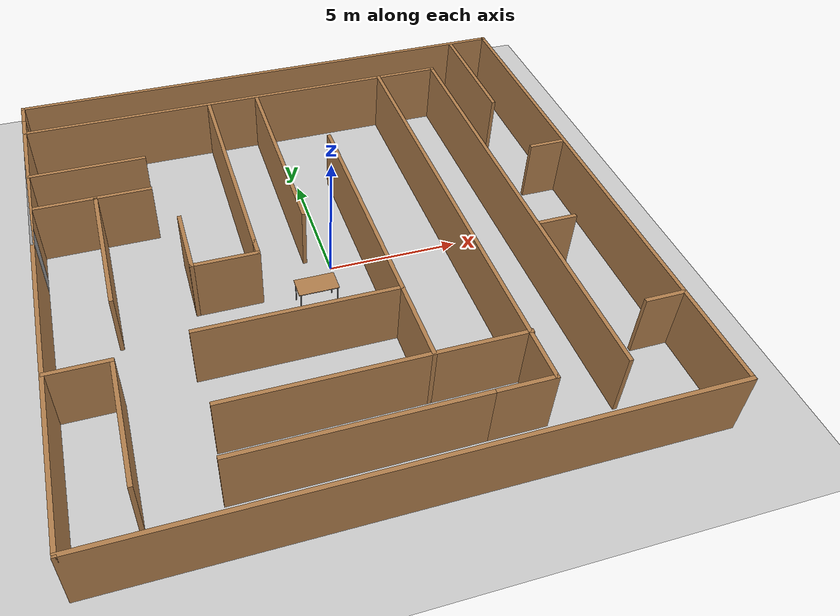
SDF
<sdf version="1.6">
 <world name="default">
  <light name="sun" type="directional">
   <pose>0 0 10 0 -0 0</pose>
   <diffuse>0.8 0.8 0.8 1</diffuse>
   <specular>0.2 0.2 0.2 1</specular>
   <attenuation>
    <range>1000</range>
    <constant>0.9</constant>
    <linear>0.01</linear>
    <quadratic>0.001</quadratic>
   </attenuation>
   <direction>-0.5 0.1 -0.9</direction>
  </light>
  <model name="ground_plane">
   <static>1</static>
   <link name="link">
    <collision name="collision">
     <geometry><plane><normal>0 0 1</normal><size>100 100</size></plane></geometry>
     <surface><friction><ode><mu>100</mu><mu2>50</mu2></ode></friction></surface>
    </collision>
    <visual name="visual">
     <cast_shadows>0</cast_shadows>
     <geometry><plane><normal>0 0 1</normal><size>100 100</size></plane></geometry>
     <material>
      <script><uri>file://media/materials/scripts/gazebo.material</uri><name>Gazebo/Grey</name></script>
     </material>
    </visual>
   </link>
  </model>
  <gravity>0 0 -9.8</gravity>
  <magnetic_field>6e-06 2.3e-05 -4.2e-05</magnetic_field>
  <atmosphere type="adiabatic"/>
  <physics name="default_physics" default="0" type="ode">
   <max_step_size>0.001</max_step_size>
   <real_time_factor>1</real_time_factor>
   <real_time_update_rate>1000</real_time_update_rate>
  </physics>
  <scene><ambient>0.4 0.4 0.4 1</ambient><background>0.7 0.7 0.7 1</background><shadows>1</shadows></scene>
  <spherical_coordinates>
   <surface_model>EARTH_WGS84</surface_model>
   <latitude_deg>0</latitude_deg>
   <longitude_deg>0</longitude_deg>
   <elevation>0</elevation>
   <heading_deg>0</heading_deg>
  </spherical_coordinates>
  <model name="Indoor2">
   <pose>-0.066349 -0.110572 0 0 -0 0</pose>
   <link name="Wall_0">
    <collision name="Wall_0_Collision">
     <geometry><box><size>7.75 0.15 2.5</size></box></geometry>
     <pose>0 0 1.25 0 -0 0</pose>
    </collision>
    <visual name="Wall_0_Visual">
     <pose>0 0 1.25 0 -0 0</pose>
     <geometry><box><size>7.75 0.15 2.5</size></box></geometry>
     <material>
      <script><uri>file://media/materials/scripts/gazebo.material</uri><name>Gazebo/Grey</name></script>
      <ambient>1 1 1 1</ambient>
     </material>
     <meta><layer>0</layer></meta>
    </visual>
    <pose>-10.425 5.625 0 0 -0 1.5708</pose>
   </link>
   <link name="Wall_1">
    <collision name="Wall_1_Collision">
     <geometry><box><size>20 0.15 2.5</size></box></geometry>
     <pose>0 0 1.25 0 -0 0</pose>
    </collision>
    <visual name="Wall_1_Visual">
     <pose>0 0 1.25 0 -0 0</pose>
     <geometry><box><size>20 0.15 2.5</size></box></geometry>
     <material>
      <script><uri>file://media/materials/scripts/gazebo.material</uri><name>Gazebo/Wood</name></script>
      <ambient>1 1 1 1</ambient>
     </material>
     <meta><layer>0</layer></meta>
    </visual>
    <pose>-10.425 -0.5 0 0 -0 -1.5708</pose>
   </link>
   <link name="Wall_10">
    <collision name="Wall_10_Collision">
     <geometry><box><size>17.5 0.15 2.5</size></box></geometry>
     <pose>0 0 1.25 0 -0 0</pose>
    </collision>
    <visual name="Wall_10_Visual">
     <pose>0 0 1.25 0 -0 0</pose>
     <geometry><box><size>17.5 0.15 2.5</size></box></geometry>
     <material>
      <script><uri>file://media/materials/scripts/gazebo.material</uri><name>Gazebo/Wood</name></script>
      <ambient>1 1 1 1</ambient>
     </material>
     <meta><layer>0</layer></meta>
    </visual>
    <pose>4.70041 -0.031499 0 0 -0 -1.5708</pose>
   </link>
   <link name="Wall_11">
    <collision name="Wall_11_Collision">
     <geometry><box><size>2.25 0.15 2.5</size></box></geometry>
     <pose>0 0 1.25 0 -0 0</pose>
    </collision>
    <visual name="Wall_11_Visual">
     <pose>0 0 1.25 0 -0 0</pose>
     <geometry><box><size>2.25 0.15 2.5</size></box></geometry>
     <material>
      <script><uri>file://media/materials/scripts/gazebo.material</uri><name>Gazebo/Wood</name></script>
      <ambient>1 1 1 1</ambient>
     </material>
     <meta><layer>0</layer></meta>
    </visual>
    <pose>3.65041 -8.7065 0 0 -0 3.14159</pose>
   </link>
   <link name="Wall_12">
    <collision name="Wall_12_Collision">
     <geometry><box><size>8.5 0.15 2.5</size></box></geometry>
     <pose>0 0 1.25 0 -0 0</pose>
    </collision>
    <visual name="Wall_12_Visual">
     <pose>0 0 1.25 0 -0 0</pose>
     <geometry><box><size>8.5 0.15 2.5</size></box></geometry>
     <material>
      <script><uri>file://media/materials/scripts/gazebo.material</uri><name>Gazebo/Wood</name></script>
      <ambient>1 1 1 1</ambient>
     </material>
     <meta><layer>0</layer></meta>
    </visual>
    <pose>-1.57459 -8.7065 0 0 -0 3.14159</pose>
   </link>
   <link name="Wall_14">
    <collision name="Wall_14_Collision">
     <geometry><box><size>10.5 0.15 2.5</size></box></geometry>
     <pose>0 0 1.25 0 -0 0</pose>
    </collision>
    <visual name="Wall_14_Visual">
     <pose>0 0 1.25 0 -0 0</pose>
     <geometry><box><size>10.5 0.15 2.5</size></box></geometry>
     <material>
      <script><uri>file://media/materials/scripts/gazebo.material</uri><name>Gazebo/Wood</name></script>
      <ambient>1 1 1 1</ambient>
     </material>
     <meta><layer>0</layer></meta>
    </visual>
    <pose>-0.422743 -6.80372 0 0 -0 0</pose>
   </link>
   <link name="Wall_16">
    <collision name="Wall_16_Collision">
     <geometry><box><size>12 0.15 2.5</size></box></geometry>
     <pose>0 0 1.25 0 -0 0</pose>
    </collision>
    <visual name="Wall_16_Visual">
     <pose>0 0 1.25 0 -0 0</pose>
     <geometry><box><size>12 0.15 2.5</size></box></geometry>
     <material>
      <script><uri>file://media/materials/scripts/gazebo.material</uri><name>Gazebo/Wood</name></script>
      <ambient>1 1 1 1</ambient>
     </material>
     <meta><layer>0</layer></meta>
    </visual>
    <pose>1.42189 -0.878722 0 0 -0 1.5708</pose>
   </link>
   <link name="Wall_18">
    <collision name="Wall_18_Collision">
     <geometry><box><size>7.25 0.15 2.5</size></box></geometry>
     <pose>0 0 1.25 0 -0 0</pose>
    </collision>
    <visual name="Wall_18_Visual">
     <pose>0 0 1.25 0 -0 0</pose>
     <geometry><box><size>7.25 0.15 2.5</size></box></geometry>
     <material>
      <script><uri>file://media/materials/scripts/gazebo.material</uri><name>Gazebo/Wood</name></script>
      <ambient>1 1 1 1</ambient>
     </material>
     <meta><layer>0</layer></meta>
    </visual>
    <pose>-2.16833 -3.8068 0 0 -0 3.14159</pose>
   </link>
   <link name="Wall_2">
    <collision name="Wall_2_Collision">
     <geometry><box><size>21 0.15 2.5</size></box></geometry>
     <pose>0 0 1.25 0 -0 0</pose>
    </collision>
    <visual name="Wall_2_Visual">
     <pose>0 0 1.25 0 -0 0</pose>
     <geometry><box><size>21 0.15 2.5</size></box></geometry>
     <material>
      <script><uri>file://media/materials/scripts/gazebo.material</uri><name>Gazebo/Wood</name></script>
      <ambient>1 1 1 1</ambient>
     </material>
     <meta><layer>0</layer></meta>
    </visual>
    <pose>0 -10.425 0 0 -0 0</pose>
   </link>
   <link name="Wall_20">
    <collision name="Wall_20_Collision">
     <geometry><box><size>9 0.15 2.5</size></box></geometry>
     <pose>0 0 1.25 0 -0 0</pose>
    </collision>
    <visual name="Wall_20_Visual">
     <pose>0 0 1.25 0 -0 0</pose>
     <geometry><box><size>9 0.15 2.5</size></box></geometry>
     <material>
      <script><uri>file://media/materials/scripts/gazebo.material</uri><name>Gazebo/Wood</name></script>
      <ambient>1 1 1 1</ambient>
     </material>
     <meta><layer>0</layer></meta>
    </visual>
    <pose>-2.8623 4.19839 0 0 -0 -1.5708</pose>
   </link>
   <link name="Wall_22">
    <collision name="Wall_22_Collision">
     <geometry><box><size>4.5 0.15 2.5</size></box></geometry>
     <pose>0 0 1.25 0 -0 0</pose>
    </collision>
    <visual name="Wall_22_Visual">
     <pose>0 0 1.25 0 -0 0</pose>
     <geometry><box><size>4.5 0.15 2.5</size></box></geometry>
     <material>
      <script><uri>file://media/materials/scripts/gazebo.material</uri><name>Gazebo/Wood</name></script>
      <ambient>1 1 1 1</ambient>
     </material>
     <meta><layer>0</layer></meta>
    </visual>
    <pose>-8.16955 5.70692 0 0 -0 0</pose>
   </link>
   <link name="Wall_24">
    <collision name="Wall_24_Collision">
     <geometry><box><size>4.5 0.15 2.5</size></box></geometry>
     <pose>0 0 1.25 0 -0 0</pose>
    </collision>
    <visual name="Wall_24_Visual">
     <pose>0 0 1.25 0 -0 0</pose>
     <geometry><box><size>4.5 0.15 2.5</size></box></geometry>
     <material>
      <script><uri>file://media/materials/scripts/gazebo.material</uri><name>Gazebo/Wood</name></script>
      <ambient>1 1 1 1</ambient>
     </material>
     <meta><layer>0</layer></meta>
    </visual>
    <pose>-8.18966 3.73579 0 0 -0 0</pose>
   </link>
   <link name="Wall_26">
    <collision name="Wall_26_Collision">
     <geometry><box><size>5.5 0.15 2.5</size></box></geometry>
     <pose>0 0 1.25 0 -0 0</pose>
    </collision>
    <visual name="Wall_26_Visual">
     <pose>0 0 1.25 0 -0 0</pose>
     <geometry><box><size>5.5 0.15 2.5</size></box></geometry>
     <material>
      <script><uri>file://media/materials/scripts/gazebo.material</uri><name>Gazebo/Wood</name></script>
      <ambient>1 1 1 1</ambient>
     </material>
     <meta><layer>0</layer></meta>
    </visual>
    <pose>-8.0516 0.980335 0 0 -0 -1.5708</pose>
   </link>
   <link name="Wall_28">
    <collision name="Wall_28_Collision">
     <geometry><box><size>0.75 0.15 2.5</size></box></geometry>
     <pose>0 0 1.25 0 -0 0</pose>
    </collision>
    <visual name="Wall_28_Visual">
     <pose>0 0 1.25 0 -0 0</pose>
     <geometry><box><size>0.75 0.15 2.5</size></box></geometry>
     <material>
      <script><uri>file://media/materials/scripts/gazebo.material</uri><name>Gazebo/Wood</name></script>
      <ambient>1 1 1 1</ambient>
     </material>
     <meta><layer>0</layer></meta>
    </visual>
    <pose>-2.8623 -0.526613 0 0 -0 -1.5708</pose>
   </link>
   <link name="Wall_29">
    <collision name="Wall_29_Collision">
     <geometry><box><size>2.5 0.15 2.5</size></box></geometry>
     <pose>0 0 1.25 0 -0 0</pose>
    </collision>
    <visual name="Wall_29_Visual">
     <pose>0 0 1.25 0 -0 0</pose>
     <geometry><box><size>2.5 0.15 2.5</size></box></geometry>
     <material>
      <script><uri>file://media/materials/scripts/gazebo.material</uri><name>Gazebo/Wood</name></script>
      <ambient>1 1 1 1</ambient>
     </material>
     <meta><layer>0</layer></meta>
    </visual>
    <pose>-4.0373 -0.826613 0 0 -0 3.14159</pose>
   </link>
   <link name="Wall_3">
    <collision name="Wall_3_Collision">
     <geometry><box><size>21 0.15 2.5</size></box></geometry>
     <pose>0 0 1.25 0 -0 0</pose>
    </collision>
    <visual name="Wall_3_Visual">
     <pose>0 0 1.25 0 -0 0</pose>
     <geometry><box><size>21 0.15 2.5</size></box></geometry>
     <material>
      <script><uri>file://media/materials/scripts/gazebo.material</uri><name>Gazebo/Wood</name></script>
      <ambient>1 1 1 1</ambient>
     </material>
     <meta><layer>0</layer></meta>
    </visual>
    <pose>10.425 0 0 0 -0 1.5708</pose>
   </link>
   <link name="Wall_30">
    <collision name="Wall_30_Collision">
     <geometry><box><size>2.75 0.15 2.5</size></box></geometry>
     <pose>0 0 1.25 0 -0 0</pose>
    </collision>
    <visual name="Wall_30_Visual">
     <pose>0 0 1.25 0 -0 0</pose>
     <geometry><box><size>2.75 0.15 2.5</size></box></geometry>
     <material>
      <script><uri>file://media/materials/scripts/gazebo.material</uri><name>Gazebo/Wood</name></script>
      <ambient>1 1 1 1</ambient>
     </material>
     <meta><layer>0</layer></meta>
    </visual>
    <pose>-5.2123 0.473387 0 0 -0 1.5708</pose>
   </link>
   <link name="Wall_32">
    <collision name="Wall_32_Collision">
     <geometry><box><size>8 0.15 2.5</size></box></geometry>
     <pose>0 0 1.25 0 -0 0</pose>
    </collision>
    <visual name="Wall_32_Visual">
     <pose>0 0 1.25 0 -0 0</pose>
     <geometry><box><size>8 0.15 2.5</size></box></geometry>
     <material>
      <script><uri>file://media/materials/scripts/gazebo.material</uri><name>Gazebo/Wood</name></script>
      <ambient>1 1 1 1</ambient>
     </material>
     <meta><layer>0</layer></meta>
    </visual>
    <pose>-0.810713 4.67827 0 0 -0 -1.5708</pose>
   </link>
   <link name="Wall_34">
    <collision name="Wall_34_Collision">
     <geometry><box><size>1.5 0.15 2.5</size></box></geometry>
     <pose>0 0 1.25 0 -0 0</pose>
    </collision>
    <visual name="Wall_34_Visual">
     <pose>0 0 1.25 0 -0 0</pose>
     <geometry><box><size>1.5 0.15 2.5</size></box></geometry>
     <material>
      <script><uri>file://media/materials/scripts/gazebo.material</uri><name>Gazebo/Wood</name></script>
      <ambient>1 1 1 1</ambient>
     </material>
     <meta><layer>0</layer></meta>
    </visual>
    <pose>9.69743 2.16693 0 0 -0 3.14159</pose>
   </link>
   <link name="Wall_36">
    <collision name="Wall_36_Collision">
     <geometry><box><size>1.5 0.15 2.5</size></box></geometry>
     <pose>0 0 1.25 0 -0 0</pose>
    </collision>
    <visual name="Wall_36_Visual">
     <pose>0 0 1.25 0 -0 0</pose>
     <geometry><box><size>1.5 0.15 2.5</size></box></geometry>
     <material>
      <script><uri>file://media/materials/scripts/gazebo.material</uri><name>Gazebo/Wood</name></script>
      <ambient>1 1 1 1</ambient>
     </material>
     <meta><layer>0</layer></meta>
    </visual>
    <pose>7.99017 -2.11726 0 0 -0 0</pose>
   </link>
   <link name="Wall_38">
    <collision name="Wall_38_Collision">
     <geometry><box><size>1.5 0.15 2.5</size></box></geometry>
     <pose>0 0 1.25 0 -0 0</pose>
    </collision>
    <visual name="Wall_38_Visual">
     <pose>0 0 1.25 0 -0 0</pose>
     <geometry><box><size>1.5 0.15 2.5</size></box></geometry>
     <material>
      <script><uri>file://media/materials/scripts/gazebo.material</uri><name>Gazebo/Wood</name></script>
      <ambient>1 1 1 1</ambient>
     </material>
     <meta><layer>0</layer></meta>
    </visual>
    <pose>9.69743 -6.6227 0 0 -0 3.14159</pose>
   </link>
   <link name="Wall_4">
    <collision name="Wall_4_Collision">
     <geometry><box><size>21 0.15 2.5</size></box></geometry>
     <pose>0 0 1.25 0 -0 0</pose>
    </collision>
    <visual name="Wall_4_Visual">
     <pose>0 0 1.25 0 -0 0</pose>
     <geometry><box><size>21 0.15 2.5</size></box></geometry>
     <material>
      <script><uri>file://media/materials/scripts/gazebo.material</uri><name>Gazebo/Wood</name></script>
      <ambient>1 1 1 1</ambient>
     </material>
     <meta><layer>0</layer></meta>
    </visual>
    <pose>0 10.425 0 0 -0 3.14159</pose>
   </link>
   <link name="Wall_40">
    <collision name="Wall_40_Collision">
     <geometry><box><size>5 0.15 2.5</size></box></geometry>
     <pose>0 0 1.25 0 -0 0</pose>
    </collision>
    <visual name="Wall_40_Visual">
     <pose>0 0 1.25 0 -0 0</pose>
     <geometry><box><size>5 0.15 2.5</size></box></geometry>
     <material>
      <script><uri>file://media/materials/scripts/gazebo.material</uri><name>Gazebo/Wood</name></script>
      <ambient>1 1 1 1</ambient>
     </material>
     <meta><layer>0</layer></meta>
    </visual>
    <pose>8.77043 7.90841 0 0 -0 1.5708</pose>
   </link>
   <link name="Wall_42">
    <collision name="Wall_42_Collision">
     <geometry><box><size>2.25 0.15 2.5</size></box></geometry>
     <pose>0 0 1.25 0 -0 0</pose>
    </collision>
    <visual name="Wall_42_Visual">
     <pose>0 0 1.25 0 -0 0</pose>
     <geometry><box><size>2.25 0.15 2.5</size></box></geometry>
     <material>
      <script><uri>file://media/materials/scripts/gazebo.material</uri><name>Gazebo/Wood</name></script>
      <ambient>1 1 1 1</ambient>
     </material>
     <meta><layer>0</layer></meta>
    </visual>
    <pose>-9.33623 -4.29168 0 0 -0 0</pose>
   </link>
   <link name="Wall_43">
    <collision name="Wall_43_Collision">
     <geometry><box><size>4.75 0.15 2.5</size></box></geometry>
     <pose>0 0 1.25 0 -0 0</pose>
    </collision>
    <visual name="Wall_43_Visual">
     <pose>0 0 1.25 0 -0 0</pose>
     <geometry><box><size>4.75 0.15 2.5</size></box></geometry>
     <material>
      <script><uri>file://media/materials/scripts/gazebo.material</uri><name>Gazebo/Wood</name></script>
      <ambient>1 1 1 1</ambient>
     </material>
     <meta><layer>0</layer></meta>
    </visual>
    <pose>-8.28623 -6.59168 0 0 -0 -1.5708</pose>
   </link>
   <link name="Wall_5">
    <collision name="Wall_5_Collision">
     <geometry><box><size>1.15 0.15 2.5</size></box></geometry>
     <pose>0 0 1.25 0 -0 0</pose>
    </collision>
    <visual name="Wall_5_Visual">
     <pose>0 0 1.25 0 -0 0</pose>
     <geometry><box><size>1.15 0.15 2.5</size></box></geometry>
     <material>
      <script><uri>file://media/materials/scripts/gazebo.material</uri><name>Gazebo/Wood</name></script>
      <ambient>1 1 1 1</ambient>
     </material>
     <meta><layer>0</layer></meta>
    </visual>
    <pose>-10.425 9.925 0 0 -0 -1.5708</pose>
   </link>
   <link name="Wall_7">
    <collision name="Wall_7_Collision">
     <geometry><box><size>17.75 0.15 2.5</size></box></geometry>
     <pose>0 0 1.25 0 -0 0</pose>
    </collision>
    <visual name="Wall_7_Visual">
     <pose>0 0 1.25 0 -0 0</pose>
     <geometry><box><size>17.75 0.15 2.5</size></box></geometry>
     <material>
      <script><uri>file://media/materials/scripts/gazebo.material</uri><name>Gazebo/Wood</name></script>
      <ambient>1 1 1 1</ambient>
     </material>
     <meta><layer>0</layer></meta>
    </visual>
    <pose>-1.60489 8.6435 0 0 -0 0</pose>
   </link>
   <link name="Wall_8">
    <collision name="Wall_8_Collision">
     <geometry><box><size>17.5 0.15 2.5</size></box></geometry>
     <pose>0 0 1.25 0 -0 0</pose>
    </collision>
    <visual name="Wall_8_Visual">
     <pose>0 0 1.25 0 -0 0</pose>
     <geometry><box><size>17.5 0.15 2.5</size></box></geometry>
     <material>
      <script><uri>file://media/materials/scripts/gazebo.material</uri><name>Gazebo/Wood</name></script>
      <ambient>1 1 1 1</ambient>
     </material>
     <meta><layer>0</layer></meta>
    </visual>
    <pose>7.19511 -0.031499 0 0 -0 -1.5708</pose>
   </link>
   <static>1</static>
  </model>
  <model name="table">
   <static>1</static>
   <link name="link">
    <collision name="surface">
     <pose>0 0 1 0 -0 0</pose>
     <geometry><box><size>1.5 0.8 0.03</size></box></geometry>
     <surface><friction><ode><mu>0.6</mu><mu2>0.6</mu2></ode></friction></surface>
    </collision>
    <visual name="visual1">
     <pose>0 0 1 0 -0 0</pose>
     <geometry><box><size>1.5 0.8 0.03</size></box></geometry>
     <material>
      <script><uri>file://media/materials/scripts/gazebo.material</uri><name>Gazebo/Wood</name></script>
     </material>
    </visual>
    <collision name="front_left_leg">
     <pose>0.68 0.38 0.5 0 -0 0</pose>
     <geometry><cylinder><radius>0.02</radius><length>1</length></cylinder></geometry>
    </collision>
    <visual name="front_left_leg">
     <pose>0.68 0.38 0.5 0 -0 0</pose>
     <geometry><cylinder><radius>0.02</radius><length>1</length></cylinder></geometry>
     <material>
      <script><uri>file://media/materials/scripts/gazebo.material</uri><name>Gazebo/Grey</name></script>
     </material>
    </visual>
    <collision name="front_right_leg">
     <pose>0.68 -0.38 0.5 0 -0 0</pose>
     <geometry><cylinder><radius>0.02</radius><length>1</length></cylinder></geometry>
    </collision>
    <visual name="front_right_leg">
     <pose>0.68 -0.38 0.5 0 -0 0</pose>
     <geometry><cylinder><radius>0.02</radius><length>1</length></cylinder></geometry>
     <material>
      <script><uri>file://media/materials/scripts/gazebo.material</uri><name>Gazebo/Grey</name></script>
     </material>
    </visual>
    <collision name="back_right_leg">
     <pose>-0.68 -0.38 0.5 0 -0 0</pose>
     <geometry><cylinder><radius>0.02</radius><length>1</length></cylinder></geometry>
    </collision>
    <visual name="back_right_leg">
     <pose>-0.68 -0.38 0.5 0 -0 0</pose>
     <geometry><cylinder><radius>0.02</radius><length>1</length></cylinder></geometry>
     <material>
      <script><uri>file://media/materials/scripts/gazebo.material</uri><name>Gazebo/Grey</name></script>
     </material>
    </visual>
    <collision name="back_left_leg">
     <pose>-0.68 0.38 0.5 0 -0 0</pose>
     <geometry><cylinder><radius>0.02</radius><length>1</length></cylinder></geometry>
    </collision>
    <visual name="back_left_leg">
     <pose>-0.68 0.38 0.5 0 -0 0</pose>
     <geometry><cylinder><radius>0.02</radius><length>1</length></cylinder></geometry>
     <material>
      <script><uri>file://media/materials/scripts/gazebo.material</uri><name>Gazebo/Grey</name></script>
     </material>
    </visual>
   </link>
   <pose>-1.00205 -1.5841 0 0 -0 0</pose>
  </model>
 </world>
</sdf>
